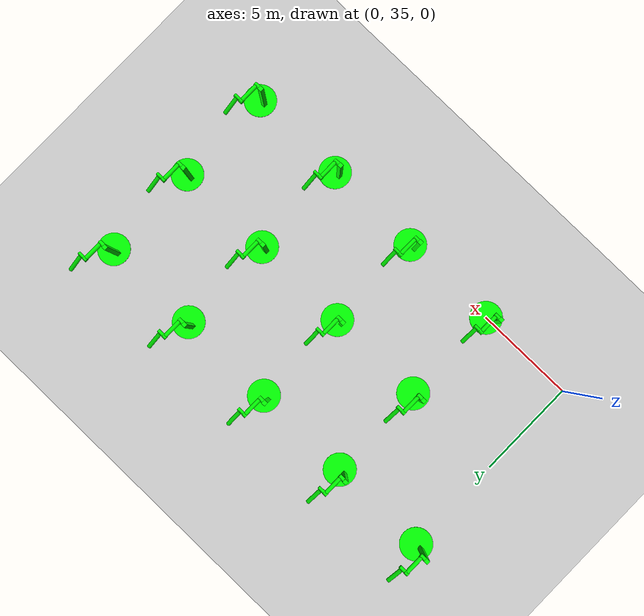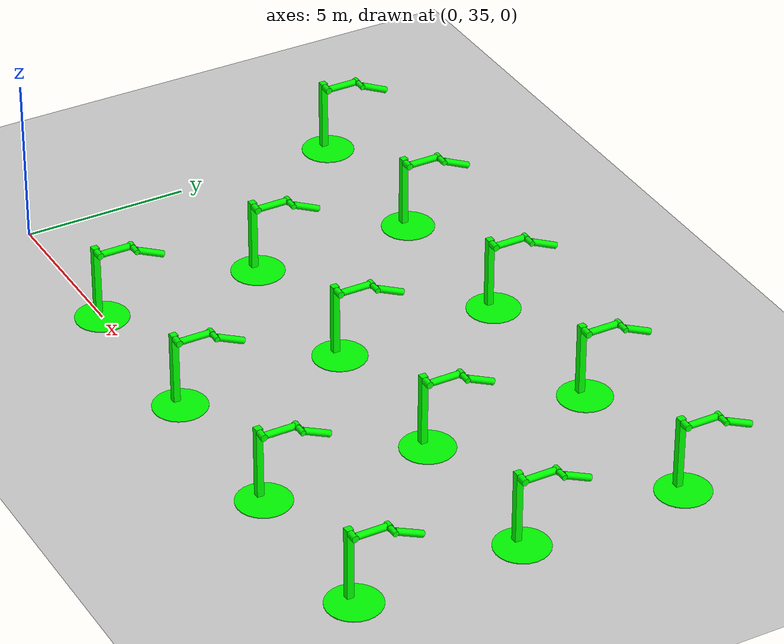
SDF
<sdf version="1.6">
 <world name="double_pendulums">
  <model name="ground_plane">
   <static>true</static>
   <link name="link">
    <collision name="collision">
     <geometry><plane><normal>0 0 1</normal><size>100 100</size></plane></geometry>
    </collision>
    <visual name="visual">
     <geometry><plane><normal>0 0 1</normal><size>100 100</size></plane></geometry>
     <material>
      <ambient>0.8 0.8 0.8 1</ambient>
      <diffuse>0.8 0.8 0.8 1</diffuse>
      <specular>0.8 0.8 0.8 1</specular>
     </material>
    </visual>
   </link>
  </model>
  <model name="dbl_pendulum_111">
   <pose>5 35 0 0 0 0</pose>
   <link name="base">
    <inertial><mass>100</mass></inertial>
    <visual name="vis_plate_on_ground">
     <pose>0 0 0.01 0 0 0</pose>
     <geometry><cylinder><radius>0.8</radius><length>0.02</length></cylinder></geometry>
     <material><ambient>0 1 0 1</ambient><diffuse>0 1 0 1</diffuse><specular>0 1 0 1</specular></material>
    </visual>
    <visual name="vis_pole">
     <pose>-0.275 0 1.1 0 0 0</pose>
     <geometry><box><size>0.2 0.2 2.2</size></box></geometry>
     <material><ambient>0 1 0 1</ambient><diffuse>0 1 0 1</diffuse><specular>0 1 0 1</specular></material>
    </visual>
    <collision name="col_plate_on_ground">
     <pose>0 0 0.01 0 0 0</pose>
     <geometry><cylinder><radius>0.8</radius><length>0.02</length></cylinder></geometry>
    </collision>
    <collision name="col_pole">
     <pose>-0.275 0 1.1 0 0 0</pose>
     <geometry><box><size>0.2 0.2 2.2</size></box></geometry>
    </collision>
   </link>
   <link name="upper_link">
    <pose>0 0 2.1 -1.5708 0 0</pose>
    <inertial><pose>0 0 0.5 0 0 0</pose></inertial>
    <visual name="vis_upper_joint">
     <pose>-0.05 0 0 0 1.5708 0</pose>
     <geometry><cylinder><radius>0.1</radius><length>0.3</length></cylinder></geometry>
     <material><ambient>0 1 0 1</ambient><diffuse>0 1 0 1</diffuse><specular>0 1 0 1</specular></material>
    </visual>
    <visual name="vis_lower_joint">
     <pose>0 0 1.0 0 1.5708 0</pose>
     <geometry><cylinder><radius>0.1</radius><length>0.2</length></cylinder></geometry>
     <material><ambient>0 1 0 1</ambient><diffuse>0 1 0 1</diffuse><specular>0 1 0 1</specular></material>
    </visual>
    <visual name="vis_cylinder">
     <pose>0 0 0.5 0 0 0</pose>
     <geometry><cylinder><radius>0.1</radius><length>0.9</length></cylinder></geometry>
     <material><ambient>0 1 0 1</ambient><diffuse>0 1 0 1</diffuse><specular>0 1 0 1</specular></material>
    </visual>
    <collision name="col_upper_joint">
     <pose>-0.05 0 0 0 1.5708 0</pose>
     <geometry><cylinder><radius>0.1</radius><length>0.3</length></cylinder></geometry>
    </collision>
    <collision name="col_lower_joint">
     <pose>0 0 1.0 0 1.5708 0</pose>
     <geometry><cylinder><radius>0.1</radius><length>0.2</length></cylinder></geometry>
    </collision>
    <collision name="col_cylinder">
     <pose>0 0 0.5 0 0 0</pose>
     <geometry><cylinder><radius>0.1</radius><length>0.9</length></cylinder></geometry>
    </collision>
   </link>
   <link name="lower_link">
    <pose>0.25 1.0 2.1 -2 0 0</pose>
    <inertial><pose>0 0 0.5 0 0 0</pose></inertial>
    <visual name="vis_lower_joint">
     <pose>0 0 0 0 1.5708 0</pose>
     <geometry><cylinder><radius>0.08</radius><length>0.3</length></cylinder></geometry>
     <material><ambient>0 1 0 1</ambient><diffuse>0 1 0 1</diffuse><specular>0 1 0 1</specular></material>
    </visual>
    <visual name="vis_cylinder">
     <pose>0 0 0.5 0 0 0</pose>
     <geometry><cylinder><radius>0.1</radius><length>0.9</length></cylinder></geometry>
     <material><ambient>0 1 0 1</ambient><diffuse>0 1 0 1</diffuse><specular>0 1 0 1</specular></material>
    </visual>
    <collision name="col_lower_joint">
     <pose>0 0 0 0 1.5708 0</pose>
     <geometry><cylinder><radius>0.08</radius><length>0.3</length></cylinder></geometry>
    </collision>
    <collision name="col_cylinder">
     <pose>0 0 0.5 0 0 0</pose>
     <geometry><cylinder><radius>0.1</radius><length>0.9</length></cylinder></geometry>
    </collision>
   </link>
   <joint name="upper_joint" type="revolute">
    <parent>base</parent>
    <child>upper_link</child>
    <axis><xyz>1.0 0 0</xyz></axis>
   </joint>
   <joint name="lower_joint" type="revolute">
    <parent>upper_link</parent>
    <child>lower_link</child>
    <axis><xyz>1.0 0 0</xyz></axis>
   </joint>
  </model>
  <model name="dbl_pendulum_112">
   <pose>10 35 0 0 0 0</pose>
   <link name="base">
    <inertial><mass>100</mass></inertial>
    <visual name="vis_plate_on_ground">
     <pose>0 0 0.01 0 0 0</pose>
     <geometry><cylinder><radius>0.8</radius><length>0.02</length></cylinder></geometry>
     <material><ambient>0 1 0 1</ambient><diffuse>0 1 0 1</diffuse><specular>0 1 0 1</specular></material>
    </visual>
    <visual name="vis_pole">
     <pose>-0.275 0 1.1 0 0 0</pose>
     <geometry><box><size>0.2 0.2 2.2</size></box></geometry>
     <material><ambient>0 1 0 1</ambient><diffuse>0 1 0 1</diffuse><specular>0 1 0 1</specular></material>
    </visual>
    <collision name="col_plate_on_ground">
     <pose>0 0 0.01 0 0 0</pose>
     <geometry><cylinder><radius>0.8</radius><length>0.02</length></cylinder></geometry>
    </collision>
    <collision name="col_pole">
     <pose>-0.275 0 1.1 0 0 0</pose>
     <geometry><box><size>0.2 0.2 2.2</size></box></geometry>
    </collision>
   </link>
   <link name="upper_link">
    <pose>0 0 2.1 -1.5708 0 0</pose>
    <inertial><pose>0 0 0.5 0 0 0</pose></inertial>
    <visual name="vis_upper_joint">
     <pose>-0.05 0 0 0 1.5708 0</pose>
     <geometry><cylinder><radius>0.1</radius><length>0.3</length></cylinder></geometry>
     <material><ambient>0 1 0 1</ambient><diffuse>0 1 0 1</diffuse><specular>0 1 0 1</specular></material>
    </visual>
    <visual name="vis_lower_joint">
     <pose>0 0 1.0 0 1.5708 0</pose>
     <geometry><cylinder><radius>0.1</radius><length>0.2</length></cylinder></geometry>
     <material><ambient>0 1 0 1</ambient><diffuse>0 1 0 1</diffuse><specular>0 1 0 1</specular></material>
    </visual>
    <visual name="vis_cylinder">
     <pose>0 0 0.5 0 0 0</pose>
     <geometry><cylinder><radius>0.1</radius><length>0.9</length></cylinder></geometry>
     <material><ambient>0 1 0 1</ambient><diffuse>0 1 0 1</diffuse><specular>0 1 0 1</specular></material>
    </visual>
    <collision name="col_upper_joint">
     <pose>-0.05 0 0 0 1.5708 0</pose>
     <geometry><cylinder><radius>0.1</radius><length>0.3</length></cylinder></geometry>
    </collision>
    <collision name="col_lower_joint">
     <pose>0 0 1.0 0 1.5708 0</pose>
     <geometry><cylinder><radius>0.1</radius><length>0.2</length></cylinder></geometry>
    </collision>
    <collision name="col_cylinder">
     <pose>0 0 0.5 0 0 0</pose>
     <geometry><cylinder><radius>0.1</radius><length>0.9</length></cylinder></geometry>
    </collision>
   </link>
   <link name="lower_link">
    <pose>0.25 1.0 2.1 -2 0 0</pose>
    <inertial><pose>0 0 0.5 0 0 0</pose></inertial>
    <visual name="vis_lower_joint">
     <pose>0 0 0 0 1.5708 0</pose>
     <geometry><cylinder><radius>0.08</radius><length>0.3</length></cylinder></geometry>
     <material><ambient>0 1 0 1</ambient><diffuse>0 1 0 1</diffuse><specular>0 1 0 1</specular></material>
    </visual>
    <visual name="vis_cylinder">
     <pose>0 0 0.5 0 0 0</pose>
     <geometry><cylinder><radius>0.1</radius><length>0.9</length></cylinder></geometry>
     <material><ambient>0 1 0 1</ambient><diffuse>0 1 0 1</diffuse><specular>0 1 0 1</specular></material>
    </visual>
    <collision name="col_lower_joint">
     <pose>0 0 0 0 1.5708 0</pose>
     <geometry><cylinder><radius>0.08</radius><length>0.3</length></cylinder></geometry>
    </collision>
    <collision name="col_cylinder">
     <pose>0 0 0.5 0 0 0</pose>
     <geometry><cylinder><radius>0.1</radius><length>0.9</length></cylinder></geometry>
    </collision>
   </link>
   <joint name="upper_joint" type="revolute">
    <parent>base</parent>
    <child>upper_link</child>
    <axis><xyz>1.0 0 0</xyz></axis>
   </joint>
   <joint name="lower_joint" type="revolute">
    <parent>upper_link</parent>
    <child>lower_link</child>
    <axis><xyz>1.0 0 0</xyz></axis>
   </joint>
  </model>
  <model name="dbl_pendulum_113">
   <pose>15 35 0 0 0 0</pose>
   <link name="base">
    <inertial><mass>100</mass></inertial>
    <visual name="vis_plate_on_ground">
     <pose>0 0 0.01 0 0 0</pose>
     <geometry><cylinder><radius>0.8</radius><length>0.02</length></cylinder></geometry>
     <material><ambient>0 1 0 1</ambient><diffuse>0 1 0 1</diffuse><specular>0 1 0 1</specular></material>
    </visual>
    <visual name="vis_pole">
     <pose>-0.275 0 1.1 0 0 0</pose>
     <geometry><box><size>0.2 0.2 2.2</size></box></geometry>
     <material><ambient>0 1 0 1</ambient><diffuse>0 1 0 1</diffuse><specular>0 1 0 1</specular></material>
    </visual>
    <collision name="col_plate_on_ground">
     <pose>0 0 0.01 0 0 0</pose>
     <geometry><cylinder><radius>0.8</radius><length>0.02</length></cylinder></geometry>
    </collision>
    <collision name="col_pole">
     <pose>-0.275 0 1.1 0 0 0</pose>
     <geometry><box><size>0.2 0.2 2.2</size></box></geometry>
    </collision>
   </link>
   <link name="upper_link">
    <pose>0 0 2.1 -1.5708 0 0</pose>
    <inertial><pose>0 0 0.5 0 0 0</pose></inertial>
    <visual name="vis_upper_joint">
     <pose>-0.05 0 0 0 1.5708 0</pose>
     <geometry><cylinder><radius>0.1</radius><length>0.3</length></cylinder></geometry>
     <material><ambient>0 1 0 1</ambient><diffuse>0 1 0 1</diffuse><specular>0 1 0 1</specular></material>
    </visual>
    <visual name="vis_lower_joint">
     <pose>0 0 1.0 0 1.5708 0</pose>
     <geometry><cylinder><radius>0.1</radius><length>0.2</length></cylinder></geometry>
     <material><ambient>0 1 0 1</ambient><diffuse>0 1 0 1</diffuse><specular>0 1 0 1</specular></material>
    </visual>
    <visual name="vis_cylinder">
     <pose>0 0 0.5 0 0 0</pose>
     <geometry><cylinder><radius>0.1</radius><length>0.9</length></cylinder></geometry>
     <material><ambient>0 1 0 1</ambient><diffuse>0 1 0 1</diffuse><specular>0 1 0 1</specular></material>
    </visual>
    <collision name="col_upper_joint">
     <pose>-0.05 0 0 0 1.5708 0</pose>
     <geometry><cylinder><radius>0.1</radius><length>0.3</length></cylinder></geometry>
    </collision>
    <collision name="col_lower_joint">
     <pose>0 0 1.0 0 1.5708 0</pose>
     <geometry><cylinder><radius>0.1</radius><length>0.2</length></cylinder></geometry>
    </collision>
    <collision name="col_cylinder">
     <pose>0 0 0.5 0 0 0</pose>
     <geometry><cylinder><radius>0.1</radius><length>0.9</length></cylinder></geometry>
    </collision>
   </link>
   <link name="lower_link">
    <pose>0.25 1.0 2.1 -2 0 0</pose>
    <inertial><pose>0 0 0.5 0 0 0</pose></inertial>
    <visual name="vis_lower_joint">
     <pose>0 0 0 0 1.5708 0</pose>
     <geometry><cylinder><radius>0.08</radius><length>0.3</length></cylinder></geometry>
     <material><ambient>0 1 0 1</ambient><diffuse>0 1 0 1</diffuse><specular>0 1 0 1</specular></material>
    </visual>
    <visual name="vis_cylinder">
     <pose>0 0 0.5 0 0 0</pose>
     <geometry><cylinder><radius>0.1</radius><length>0.9</length></cylinder></geometry>
     <material><ambient>0 1 0 1</ambient><diffuse>0 1 0 1</diffuse><specular>0 1 0 1</specular></material>
    </visual>
    <collision name="col_lower_joint">
     <pose>0 0 0 0 1.5708 0</pose>
     <geometry><cylinder><radius>0.08</radius><length>0.3</length></cylinder></geometry>
    </collision>
    <collision name="col_cylinder">
     <pose>0 0 0.5 0 0 0</pose>
     <geometry><cylinder><radius>0.1</radius><length>0.9</length></cylinder></geometry>
    </collision>
   </link>
   <joint name="upper_joint" type="revolute">
    <parent>base</parent>
    <child>upper_link</child>
    <axis><xyz>1.0 0 0</xyz></axis>
   </joint>
   <joint name="lower_joint" type="revolute">
    <parent>upper_link</parent>
    <child>lower_link</child>
    <axis><xyz>1.0 0 0</xyz></axis>
   </joint>
  </model>
  <model name="dbl_pendulum_114">
   <pose>20 35 0 0 0 0</pose>
   <link name="base">
    <inertial><mass>100</mass></inertial>
    <visual name="vis_plate_on_ground">
     <pose>0 0 0.01 0 0 0</pose>
     <geometry><cylinder><radius>0.8</radius><length>0.02</length></cylinder></geometry>
     <material><ambient>0 1 0 1</ambient><diffuse>0 1 0 1</diffuse><specular>0 1 0 1</specular></material>
    </visual>
    <visual name="vis_pole">
     <pose>-0.275 0 1.1 0 0 0</pose>
     <geometry><box><size>0.2 0.2 2.2</size></box></geometry>
     <material><ambient>0 1 0 1</ambient><diffuse>0 1 0 1</diffuse><specular>0 1 0 1</specular></material>
    </visual>
    <collision name="col_plate_on_ground">
     <pose>0 0 0.01 0 0 0</pose>
     <geometry><cylinder><radius>0.8</radius><length>0.02</length></cylinder></geometry>
    </collision>
    <collision name="col_pole">
     <pose>-0.275 0 1.1 0 0 0</pose>
     <geometry><box><size>0.2 0.2 2.2</size></box></geometry>
    </collision>
   </link>
   <link name="upper_link">
    <pose>0 0 2.1 -1.5708 0 0</pose>
    <inertial><pose>0 0 0.5 0 0 0</pose></inertial>
    <visual name="vis_upper_joint">
     <pose>-0.05 0 0 0 1.5708 0</pose>
     <geometry><cylinder><radius>0.1</radius><length>0.3</length></cylinder></geometry>
     <material><ambient>0 1 0 1</ambient><diffuse>0 1 0 1</diffuse><specular>0 1 0 1</specular></material>
    </visual>
    <visual name="vis_lower_joint">
     <pose>0 0 1.0 0 1.5708 0</pose>
     <geometry><cylinder><radius>0.1</radius><length>0.2</length></cylinder></geometry>
     <material><ambient>0 1 0 1</ambient><diffuse>0 1 0 1</diffuse><specular>0 1 0 1</specular></material>
    </visual>
    <visual name="vis_cylinder">
     <pose>0 0 0.5 0 0 0</pose>
     <geometry><cylinder><radius>0.1</radius><length>0.9</length></cylinder></geometry>
     <material><ambient>0 1 0 1</ambient><diffuse>0 1 0 1</diffuse><specular>0 1 0 1</specular></material>
    </visual>
    <collision name="col_upper_joint">
     <pose>-0.05 0 0 0 1.5708 0</pose>
     <geometry><cylinder><radius>0.1</radius><length>0.3</length></cylinder></geometry>
    </collision>
    <collision name="col_lower_joint">
     <pose>0 0 1.0 0 1.5708 0</pose>
     <geometry><cylinder><radius>0.1</radius><length>0.2</length></cylinder></geometry>
    </collision>
    <collision name="col_cylinder">
     <pose>0 0 0.5 0 0 0</pose>
     <geometry><cylinder><radius>0.1</radius><length>0.9</length></cylinder></geometry>
    </collision>
   </link>
   <link name="lower_link">
    <pose>0.25 1.0 2.1 -2 0 0</pose>
    <inertial><pose>0 0 0.5 0 0 0</pose></inertial>
    <visual name="vis_lower_joint">
     <pose>0 0 0 0 1.5708 0</pose>
     <geometry><cylinder><radius>0.08</radius><length>0.3</length></cylinder></geometry>
     <material><ambient>0 1 0 1</ambient><diffuse>0 1 0 1</diffuse><specular>0 1 0 1</specular></material>
    </visual>
    <visual name="vis_cylinder">
     <pose>0 0 0.5 0 0 0</pose>
     <geometry><cylinder><radius>0.1</radius><length>0.9</length></cylinder></geometry>
     <material><ambient>0 1 0 1</ambient><diffuse>0 1 0 1</diffuse><specular>0 1 0 1</specular></material>
    </visual>
    <collision name="col_lower_joint">
     <pose>0 0 0 0 1.5708 0</pose>
     <geometry><cylinder><radius>0.08</radius><length>0.3</length></cylinder></geometry>
    </collision>
    <collision name="col_cylinder">
     <pose>0 0 0.5 0 0 0</pose>
     <geometry><cylinder><radius>0.1</radius><length>0.9</length></cylinder></geometry>
    </collision>
   </link>
   <joint name="upper_joint" type="revolute">
    <parent>base</parent>
    <child>upper_link</child>
    <axis><xyz>1.0 0 0</xyz></axis>
   </joint>
   <joint name="lower_joint" type="revolute">
    <parent>upper_link</parent>
    <child>lower_link</child>
    <axis><xyz>1.0 0 0</xyz></axis>
   </joint>
  </model>
  <model name="dbl_pendulum_126">
   <pose>5 40 0 0 0 0</pose>
   <link name="base">
    <inertial><mass>100</mass></inertial>
    <visual name="vis_plate_on_ground">
     <pose>0 0 0.01 0 0 0</pose>
     <geometry><cylinder><radius>0.8</radius><length>0.02</length></cylinder></geometry>
     <material><ambient>0 1 0 1</ambient><diffuse>0 1 0 1</diffuse><specular>0 1 0 1</specular></material>
    </visual>
    <visual name="vis_pole">
     <pose>-0.275 0 1.1 0 0 0</pose>
     <geometry><box><size>0.2 0.2 2.2</size></box></geometry>
     <material><ambient>0 1 0 1</ambient><diffuse>0 1 0 1</diffuse><specular>0 1 0 1</specular></material>
    </visual>
    <collision name="col_plate_on_ground">
     <pose>0 0 0.01 0 0 0</pose>
     <geometry><cylinder><radius>0.8</radius><length>0.02</length></cylinder></geometry>
    </collision>
    <collision name="col_pole">
     <pose>-0.275 0 1.1 0 0 0</pose>
     <geometry><box><size>0.2 0.2 2.2</size></box></geometry>
    </collision>
   </link>
   <link name="upper_link">
    <pose>0 0 2.1 -1.5708 0 0</pose>
    <inertial><pose>0 0 0.5 0 0 0</pose></inertial>
    <visual name="vis_upper_joint">
     <pose>-0.05 0 0 0 1.5708 0</pose>
     <geometry><cylinder><radius>0.1</radius><length>0.3</length></cylinder></geometry>
     <material><ambient>0 1 0 1</ambient><diffuse>0 1 0 1</diffuse><specular>0 1 0 1</specular></material>
    </visual>
    <visual name="vis_lower_joint">
     <pose>0 0 1.0 0 1.5708 0</pose>
     <geometry><cylinder><radius>0.1</radius><length>0.2</length></cylinder></geometry>
     <material><ambient>0 1 0 1</ambient><diffuse>0 1 0 1</diffuse><specular>0 1 0 1</specular></material>
    </visual>
    <visual name="vis_cylinder">
     <pose>0 0 0.5 0 0 0</pose>
     <geometry><cylinder><radius>0.1</radius><length>0.9</length></cylinder></geometry>
     <material><ambient>0 1 0 1</ambient><diffuse>0 1 0 1</diffuse><specular>0 1 0 1</specular></material>
    </visual>
    <collision name="col_upper_joint">
     <pose>-0.05 0 0 0 1.5708 0</pose>
     <geometry><cylinder><radius>0.1</radius><length>0.3</length></cylinder></geometry>
    </collision>
    <collision name="col_lower_joint">
     <pose>0 0 1.0 0 1.5708 0</pose>
     <geometry><cylinder><radius>0.1</radius><length>0.2</length></cylinder></geometry>
    </collision>
    <collision name="col_cylinder">
     <pose>0 0 0.5 0 0 0</pose>
     <geometry><cylinder><radius>0.1</radius><length>0.9</length></cylinder></geometry>
    </collision>
   </link>
   <link name="lower_link">
    <pose>0.25 1.0 2.1 -2 0 0</pose>
    <inertial><pose>0 0 0.5 0 0 0</pose></inertial>
    <visual name="vis_lower_joint">
     <pose>0 0 0 0 1.5708 0</pose>
     <geometry><cylinder><radius>0.08</radius><length>0.3</length></cylinder></geometry>
     <material><ambient>0 1 0 1</ambient><diffuse>0 1 0 1</diffuse><specular>0 1 0 1</specular></material>
    </visual>
    <visual name="vis_cylinder">
     <pose>0 0 0.5 0 0 0</pose>
     <geometry><cylinder><radius>0.1</radius><length>0.9</length></cylinder></geometry>
     <material><ambient>0 1 0 1</ambient><diffuse>0 1 0 1</diffuse><specular>0 1 0 1</specular></material>
    </visual>
    <collision name="col_lower_joint">
     <pose>0 0 0 0 1.5708 0</pose>
     <geometry><cylinder><radius>0.08</radius><length>0.3</length></cylinder></geometry>
    </collision>
    <collision name="col_cylinder">
     <pose>0 0 0.5 0 0 0</pose>
     <geometry><cylinder><radius>0.1</radius><length>0.9</length></cylinder></geometry>
    </collision>
   </link>
   <joint name="upper_joint" type="revolute">
    <parent>base</parent>
    <child>upper_link</child>
    <axis><xyz>1.0 0 0</xyz></axis>
   </joint>
   <joint name="lower_joint" type="revolute">
    <parent>upper_link</parent>
    <child>lower_link</child>
    <axis><xyz>1.0 0 0</xyz></axis>
   </joint>
  </model>
  <model name="dbl_pendulum_127">
   <pose>10 40 0 0 0 0</pose>
   <link name="base">
    <inertial><mass>100</mass></inertial>
    <visual name="vis_plate_on_ground">
     <pose>0 0 0.01 0 0 0</pose>
     <geometry><cylinder><radius>0.8</radius><length>0.02</length></cylinder></geometry>
     <material><ambient>0 1 0 1</ambient><diffuse>0 1 0 1</diffuse><specular>0 1 0 1</specular></material>
    </visual>
    <visual name="vis_pole">
     <pose>-0.275 0 1.1 0 0 0</pose>
     <geometry><box><size>0.2 0.2 2.2</size></box></geometry>
     <material><ambient>0 1 0 1</ambient><diffuse>0 1 0 1</diffuse><specular>0 1 0 1</specular></material>
    </visual>
    <collision name="col_plate_on_ground">
     <pose>0 0 0.01 0 0 0</pose>
     <geometry><cylinder><radius>0.8</radius><length>0.02</length></cylinder></geometry>
    </collision>
    <collision name="col_pole">
     <pose>-0.275 0 1.1 0 0 0</pose>
     <geometry><box><size>0.2 0.2 2.2</size></box></geometry>
    </collision>
   </link>
   <link name="upper_link">
    <pose>0 0 2.1 -1.5708 0 0</pose>
    <inertial><pose>0 0 0.5 0 0 0</pose></inertial>
    <visual name="vis_upper_joint">
     <pose>-0.05 0 0 0 1.5708 0</pose>
     <geometry><cylinder><radius>0.1</radius><length>0.3</length></cylinder></geometry>
     <material><ambient>0 1 0 1</ambient><diffuse>0 1 0 1</diffuse><specular>0 1 0 1</specular></material>
    </visual>
    <visual name="vis_lower_joint">
     <pose>0 0 1.0 0 1.5708 0</pose>
     <geometry><cylinder><radius>0.1</radius><length>0.2</length></cylinder></geometry>
     <material><ambient>0 1 0 1</ambient><diffuse>0 1 0 1</diffuse><specular>0 1 0 1</specular></material>
    </visual>
    <visual name="vis_cylinder">
     <pose>0 0 0.5 0 0 0</pose>
     <geometry><cylinder><radius>0.1</radius><length>0.9</length></cylinder></geometry>
     <material><ambient>0 1 0 1</ambient><diffuse>0 1 0 1</diffuse><specular>0 1 0 1</specular></material>
    </visual>
    <collision name="col_upper_joint">
     <pose>-0.05 0 0 0 1.5708 0</pose>
     <geometry><cylinder><radius>0.1</radius><length>0.3</length></cylinder></geometry>
    </collision>
    <collision name="col_lower_joint">
     <pose>0 0 1.0 0 1.5708 0</pose>
     <geometry><cylinder><radius>0.1</radius><length>0.2</length></cylinder></geometry>
    </collision>
    <collision name="col_cylinder">
     <pose>0 0 0.5 0 0 0</pose>
     <geometry><cylinder><radius>0.1</radius><length>0.9</length></cylinder></geometry>
    </collision>
   </link>
   <link name="lower_link">
    <pose>0.25 1.0 2.1 -2 0 0</pose>
    <inertial><pose>0 0 0.5 0 0 0</pose></inertial>
    <visual name="vis_lower_joint">
     <pose>0 0 0 0 1.5708 0</pose>
     <geometry><cylinder><radius>0.08</radius><length>0.3</length></cylinder></geometry>
     <material><ambient>0 1 0 1</ambient><diffuse>0 1 0 1</diffuse><specular>0 1 0 1</specular></material>
    </visual>
    <visual name="vis_cylinder">
     <pose>0 0 0.5 0 0 0</pose>
     <geometry><cylinder><radius>0.1</radius><length>0.9</length></cylinder></geometry>
     <material><ambient>0 1 0 1</ambient><diffuse>0 1 0 1</diffuse><specular>0 1 0 1</specular></material>
    </visual>
    <collision name="col_lower_joint">
     <pose>0 0 0 0 1.5708 0</pose>
     <geometry><cylinder><radius>0.08</radius><length>0.3</length></cylinder></geometry>
    </collision>
    <collision name="col_cylinder">
     <pose>0 0 0.5 0 0 0</pose>
     <geometry><cylinder><radius>0.1</radius><length>0.9</length></cylinder></geometry>
    </collision>
   </link>
   <joint name="upper_joint" type="revolute">
    <parent>base</parent>
    <child>upper_link</child>
    <axis><xyz>1.0 0 0</xyz></axis>
   </joint>
   <joint name="lower_joint" type="revolute">
    <parent>upper_link</parent>
    <child>lower_link</child>
    <axis><xyz>1.0 0 0</xyz></axis>
   </joint>
  </model>
  <model name="dbl_pendulum_128">
   <pose>15 40 0 0 0 0</pose>
   <link name="base">
    <inertial><mass>100</mass></inertial>
    <visual name="vis_plate_on_ground">
     <pose>0 0 0.01 0 0 0</pose>
     <geometry><cylinder><radius>0.8</radius><length>0.02</length></cylinder></geometry>
     <material><ambient>0 1 0 1</ambient><diffuse>0 1 0 1</diffuse><specular>0 1 0 1</specular></material>
    </visual>
    <visual name="vis_pole">
     <pose>-0.275 0 1.1 0 0 0</pose>
     <geometry><box><size>0.2 0.2 2.2</size></box></geometry>
     <material><ambient>0 1 0 1</ambient><diffuse>0 1 0 1</diffuse><specular>0 1 0 1</specular></material>
    </visual>
    <collision name="col_plate_on_ground">
     <pose>0 0 0.01 0 0 0</pose>
     <geometry><cylinder><radius>0.8</radius><length>0.02</length></cylinder></geometry>
    </collision>
    <collision name="col_pole">
     <pose>-0.275 0 1.1 0 0 0</pose>
     <geometry><box><size>0.2 0.2 2.2</size></box></geometry>
    </collision>
   </link>
   <link name="upper_link">
    <pose>0 0 2.1 -1.5708 0 0</pose>
    <inertial><pose>0 0 0.5 0 0 0</pose></inertial>
    <visual name="vis_upper_joint">
     <pose>-0.05 0 0 0 1.5708 0</pose>
     <geometry><cylinder><radius>0.1</radius><length>0.3</length></cylinder></geometry>
     <material><ambient>0 1 0 1</ambient><diffuse>0 1 0 1</diffuse><specular>0 1 0 1</specular></material>
    </visual>
    <visual name="vis_lower_joint">
     <pose>0 0 1.0 0 1.5708 0</pose>
     <geometry><cylinder><radius>0.1</radius><length>0.2</length></cylinder></geometry>
     <material><ambient>0 1 0 1</ambient><diffuse>0 1 0 1</diffuse><specular>0 1 0 1</specular></material>
    </visual>
    <visual name="vis_cylinder">
     <pose>0 0 0.5 0 0 0</pose>
     <geometry><cylinder><radius>0.1</radius><length>0.9</length></cylinder></geometry>
     <material><ambient>0 1 0 1</ambient><diffuse>0 1 0 1</diffuse><specular>0 1 0 1</specular></material>
    </visual>
    <collision name="col_upper_joint">
     <pose>-0.05 0 0 0 1.5708 0</pose>
     <geometry><cylinder><radius>0.1</radius><length>0.3</length></cylinder></geometry>
    </collision>
    <collision name="col_lower_joint">
     <pose>0 0 1.0 0 1.5708 0</pose>
     <geometry><cylinder><radius>0.1</radius><length>0.2</length></cylinder></geometry>
    </collision>
    <collision name="col_cylinder">
     <pose>0 0 0.5 0 0 0</pose>
     <geometry><cylinder><radius>0.1</radius><length>0.9</length></cylinder></geometry>
    </collision>
   </link>
   <link name="lower_link">
    <pose>0.25 1.0 2.1 -2 0 0</pose>
    <inertial><pose>0 0 0.5 0 0 0</pose></inertial>
    <visual name="vis_lower_joint">
     <pose>0 0 0 0 1.5708 0</pose>
     <geometry><cylinder><radius>0.08</radius><length>0.3</length></cylinder></geometry>
     <material><ambient>0 1 0 1</ambient><diffuse>0 1 0 1</diffuse><specular>0 1 0 1</specular></material>
    </visual>
    <visual name="vis_cylinder">
     <pose>0 0 0.5 0 0 0</pose>
     <geometry><cylinder><radius>0.1</radius><length>0.9</length></cylinder></geometry>
     <material><ambient>0 1 0 1</ambient><diffuse>0 1 0 1</diffuse><specular>0 1 0 1</specular></material>
    </visual>
    <collision name="col_lower_joint">
     <pose>0 0 0 0 1.5708 0</pose>
     <geometry><cylinder><radius>0.08</radius><length>0.3</length></cylinder></geometry>
    </collision>
    <collision name="col_cylinder">
     <pose>0 0 0.5 0 0 0</pose>
     <geometry><cylinder><radius>0.1</radius><length>0.9</length></cylinder></geometry>
    </collision>
   </link>
   <joint name="upper_joint" type="revolute">
    <parent>base</parent>
    <child>upper_link</child>
    <axis><xyz>1.0 0 0</xyz></axis>
   </joint>
   <joint name="lower_joint" type="revolute">
    <parent>upper_link</parent>
    <child>lower_link</child>
    <axis><xyz>1.0 0 0</xyz></axis>
   </joint>
  </model>
  <model name="dbl_pendulum_129">
   <pose>20 40 0 0 0 0</pose>
   <link name="base">
    <inertial><mass>100</mass></inertial>
    <visual name="vis_plate_on_ground">
     <pose>0 0 0.01 0 0 0</pose>
     <geometry><cylinder><radius>0.8</radius><length>0.02</length></cylinder></geometry>
     <material><ambient>0 1 0 1</ambient><diffuse>0 1 0 1</diffuse><specular>0 1 0 1</specular></material>
    </visual>
    <visual name="vis_pole">
     <pose>-0.275 0 1.1 0 0 0</pose>
     <geometry><box><size>0.2 0.2 2.2</size></box></geometry>
     <material><ambient>0 1 0 1</ambient><diffuse>0 1 0 1</diffuse><specular>0 1 0 1</specular></material>
    </visual>
    <collision name="col_plate_on_ground">
     <pose>0 0 0.01 0 0 0</pose>
     <geometry><cylinder><radius>0.8</radius><length>0.02</length></cylinder></geometry>
    </collision>
    <collision name="col_pole">
     <pose>-0.275 0 1.1 0 0 0</pose>
     <geometry><box><size>0.2 0.2 2.2</size></box></geometry>
    </collision>
   </link>
   <link name="upper_link">
    <pose>0 0 2.1 -1.5708 0 0</pose>
    <inertial><pose>0 0 0.5 0 0 0</pose></inertial>
    <visual name="vis_upper_joint">
     <pose>-0.05 0 0 0 1.5708 0</pose>
     <geometry><cylinder><radius>0.1</radius><length>0.3</length></cylinder></geometry>
     <material><ambient>0 1 0 1</ambient><diffuse>0 1 0 1</diffuse><specular>0 1 0 1</specular></material>
    </visual>
    <visual name="vis_lower_joint">
     <pose>0 0 1.0 0 1.5708 0</pose>
     <geometry><cylinder><radius>0.1</radius><length>0.2</length></cylinder></geometry>
     <material><ambient>0 1 0 1</ambient><diffuse>0 1 0 1</diffuse><specular>0 1 0 1</specular></material>
    </visual>
    <visual name="vis_cylinder">
     <pose>0 0 0.5 0 0 0</pose>
     <geometry><cylinder><radius>0.1</radius><length>0.9</length></cylinder></geometry>
     <material><ambient>0 1 0 1</ambient><diffuse>0 1 0 1</diffuse><specular>0 1 0 1</specular></material>
    </visual>
    <collision name="col_upper_joint">
     <pose>-0.05 0 0 0 1.5708 0</pose>
     <geometry><cylinder><radius>0.1</radius><length>0.3</length></cylinder></geometry>
    </collision>
    <collision name="col_lower_joint">
     <pose>0 0 1.0 0 1.5708 0</pose>
     <geometry><cylinder><radius>0.1</radius><length>0.2</length></cylinder></geometry>
    </collision>
    <collision name="col_cylinder">
     <pose>0 0 0.5 0 0 0</pose>
     <geometry><cylinder><radius>0.1</radius><length>0.9</length></cylinder></geometry>
    </collision>
   </link>
   <link name="lower_link">
    <pose>0.25 1.0 2.1 -2 0 0</pose>
    <inertial><pose>0 0 0.5 0 0 0</pose></inertial>
    <visual name="vis_lower_joint">
     <pose>0 0 0 0 1.5708 0</pose>
     <geometry><cylinder><radius>0.08</radius><length>0.3</length></cylinder></geometry>
     <material><ambient>0 1 0 1</ambient><diffuse>0 1 0 1</diffuse><specular>0 1 0 1</specular></material>
    </visual>
    <visual name="vis_cylinder">
     <pose>0 0 0.5 0 0 0</pose>
     <geometry><cylinder><radius>0.1</radius><length>0.9</length></cylinder></geometry>
     <material><ambient>0 1 0 1</ambient><diffuse>0 1 0 1</diffuse><specular>0 1 0 1</specular></material>
    </visual>
    <collision name="col_lower_joint">
     <pose>0 0 0 0 1.5708 0</pose>
     <geometry><cylinder><radius>0.08</radius><length>0.3</length></cylinder></geometry>
    </collision>
    <collision name="col_cylinder">
     <pose>0 0 0.5 0 0 0</pose>
     <geometry><cylinder><radius>0.1</radius><length>0.9</length></cylinder></geometry>
    </collision>
   </link>
   <joint name="upper_joint" type="revolute">
    <parent>base</parent>
    <child>upper_link</child>
    <axis><xyz>1.0 0 0</xyz></axis>
   </joint>
   <joint name="lower_joint" type="revolute">
    <parent>upper_link</parent>
    <child>lower_link</child>
    <axis><xyz>1.0 0 0</xyz></axis>
   </joint>
  </model>
  <model name="dbl_pendulum_140">
   <pose>0 45 0 0 0 0</pose>
   <link name="base">
    <inertial><mass>100</mass></inertial>
    <visual name="vis_plate_on_ground">
     <pose>0 0 0.01 0 0 0</pose>
     <geometry><cylinder><radius>0.8</radius><length>0.02</length></cylinder></geometry>
     <material><ambient>0 1 0 1</ambient><diffuse>0 1 0 1</diffuse><specular>0 1 0 1</specular></material>
    </visual>
    <visual name="vis_pole">
     <pose>-0.275 0 1.1 0 0 0</pose>
     <geometry><box><size>0.2 0.2 2.2</size></box></geometry>
     <material><ambient>0 1 0 1</ambient><diffuse>0 1 0 1</diffuse><specular>0 1 0 1</specular></material>
    </visual>
    <collision name="col_plate_on_ground">
     <pose>0 0 0.01 0 0 0</pose>
     <geometry><cylinder><radius>0.8</radius><length>0.02</length></cylinder></geometry>
    </collision>
    <collision name="col_pole">
     <pose>-0.275 0 1.1 0 0 0</pose>
     <geometry><box><size>0.2 0.2 2.2</size></box></geometry>
    </collision>
   </link>
   <link name="upper_link">
    <pose>0 0 2.1 -1.5708 0 0</pose>
    <inertial><pose>0 0 0.5 0 0 0</pose></inertial>
    <visual name="vis_upper_joint">
     <pose>-0.05 0 0 0 1.5708 0</pose>
     <geometry><cylinder><radius>0.1</radius><length>0.3</length></cylinder></geometry>
     <material><ambient>0 1 0 1</ambient><diffuse>0 1 0 1</diffuse><specular>0 1 0 1</specular></material>
    </visual>
    <visual name="vis_lower_joint">
     <pose>0 0 1.0 0 1.5708 0</pose>
     <geometry><cylinder><radius>0.1</radius><length>0.2</length></cylinder></geometry>
     <material><ambient>0 1 0 1</ambient><diffuse>0 1 0 1</diffuse><specular>0 1 0 1</specular></material>
    </visual>
    <visual name="vis_cylinder">
     <pose>0 0 0.5 0 0 0</pose>
     <geometry><cylinder><radius>0.1</radius><length>0.9</length></cylinder></geometry>
     <material><ambient>0 1 0 1</ambient><diffuse>0 1 0 1</diffuse><specular>0 1 0 1</specular></material>
    </visual>
    <collision name="col_upper_joint">
     <pose>-0.05 0 0 0 1.5708 0</pose>
     <geometry><cylinder><radius>0.1</radius><length>0.3</length></cylinder></geometry>
    </collision>
    <collision name="col_lower_joint">
     <pose>0 0 1.0 0 1.5708 0</pose>
     <geometry><cylinder><radius>0.1</radius><length>0.2</length></cylinder></geometry>
    </collision>
    <collision name="col_cylinder">
     <pose>0 0 0.5 0 0 0</pose>
     <geometry><cylinder><radius>0.1</radius><length>0.9</length></cylinder></geometry>
    </collision>
   </link>
   <link name="lower_link">
    <pose>0.25 1.0 2.1 -2 0 0</pose>
    <inertial><pose>0 0 0.5 0 0 0</pose></inertial>
    <visual name="vis_lower_joint">
     <pose>0 0 0 0 1.5708 0</pose>
     <geometry><cylinder><radius>0.08</radius><length>0.3</length></cylinder></geometry>
     <material><ambient>0 1 0 1</ambient><diffuse>0 1 0 1</diffuse><specular>0 1 0 1</specular></material>
    </visual>
    <visual name="vis_cylinder">
     <pose>0 0 0.5 0 0 0</pose>
     <geometry><cylinder><radius>0.1</radius><length>0.9</length></cylinder></geometry>
     <material><ambient>0 1 0 1</ambient><diffuse>0 1 0 1</diffuse><specular>0 1 0 1</specular></material>
    </visual>
    <collision name="col_lower_joint">
     <pose>0 0 0 0 1.5708 0</pose>
     <geometry><cylinder><radius>0.08</radius><length>0.3</length></cylinder></geometry>
    </collision>
    <collision name="col_cylinder">
     <pose>0 0 0.5 0 0 0</pose>
     <geometry><cylinder><radius>0.1</radius><length>0.9</length></cylinder></geometry>
    </collision>
   </link>
   <joint name="upper_joint" type="revolute">
    <parent>base</parent>
    <child>upper_link</child>
    <axis><xyz>1.0 0 0</xyz></axis>
   </joint>
   <joint name="lower_joint" type="revolute">
    <parent>upper_link</parent>
    <child>lower_link</child>
    <axis><xyz>1.0 0 0</xyz></axis>
   </joint>
  </model>
  <model name="dbl_pendulum_141">
   <pose>5 45 0 0 0 0</pose>
   <link name="base">
    <inertial><mass>100</mass></inertial>
    <visual name="vis_plate_on_ground">
     <pose>0 0 0.01 0 0 0</pose>
     <geometry><cylinder><radius>0.8</radius><length>0.02</length></cylinder></geometry>
     <material><ambient>0 1 0 1</ambient><diffuse>0 1 0 1</diffuse><specular>0 1 0 1</specular></material>
    </visual>
    <visual name="vis_pole">
     <pose>-0.275 0 1.1 0 0 0</pose>
     <geometry><box><size>0.2 0.2 2.2</size></box></geometry>
     <material><ambient>0 1 0 1</ambient><diffuse>0 1 0 1</diffuse><specular>0 1 0 1</specular></material>
    </visual>
    <collision name="col_plate_on_ground">
     <pose>0 0 0.01 0 0 0</pose>
     <geometry><cylinder><radius>0.8</radius><length>0.02</length></cylinder></geometry>
    </collision>
    <collision name="col_pole">
     <pose>-0.275 0 1.1 0 0 0</pose>
     <geometry><box><size>0.2 0.2 2.2</size></box></geometry>
    </collision>
   </link>
   <link name="upper_link">
    <pose>0 0 2.1 -1.5708 0 0</pose>
    <inertial><pose>0 0 0.5 0 0 0</pose></inertial>
    <visual name="vis_upper_joint">
     <pose>-0.05 0 0 0 1.5708 0</pose>
     <geometry><cylinder><radius>0.1</radius><length>0.3</length></cylinder></geometry>
     <material><ambient>0 1 0 1</ambient><diffuse>0 1 0 1</diffuse><specular>0 1 0 1</specular></material>
    </visual>
    <visual name="vis_lower_joint">
     <pose>0 0 1.0 0 1.5708 0</pose>
     <geometry><cylinder><radius>0.1</radius><length>0.2</length></cylinder></geometry>
     <material><ambient>0 1 0 1</ambient><diffuse>0 1 0 1</diffuse><specular>0 1 0 1</specular></material>
    </visual>
    <visual name="vis_cylinder">
     <pose>0 0 0.5 0 0 0</pose>
     <geometry><cylinder><radius>0.1</radius><length>0.9</length></cylinder></geometry>
     <material><ambient>0 1 0 1</ambient><diffuse>0 1 0 1</diffuse><specular>0 1 0 1</specular></material>
    </visual>
    <collision name="col_upper_joint">
     <pose>-0.05 0 0 0 1.5708 0</pose>
     <geometry><cylinder><radius>0.1</radius><length>0.3</length></cylinder></geometry>
    </collision>
    <collision name="col_lower_joint">
     <pose>0 0 1.0 0 1.5708 0</pose>
     <geometry><cylinder><radius>0.1</radius><length>0.2</length></cylinder></geometry>
    </collision>
    <collision name="col_cylinder">
     <pose>0 0 0.5 0 0 0</pose>
     <geometry><cylinder><radius>0.1</radius><length>0.9</length></cylinder></geometry>
    </collision>
   </link>
   <link name="lower_link">
    <pose>0.25 1.0 2.1 -2 0 0</pose>
    <inertial><pose>0 0 0.5 0 0 0</pose></inertial>
    <visual name="vis_lower_joint">
     <pose>0 0 0 0 1.5708 0</pose>
     <geometry><cylinder><radius>0.08</radius><length>0.3</length></cylinder></geometry>
     <material><ambient>0 1 0 1</ambient><diffuse>0 1 0 1</diffuse><specular>0 1 0 1</specular></material>
    </visual>
    <visual name="vis_cylinder">
     <pose>0 0 0.5 0 0 0</pose>
     <geometry><cylinder><radius>0.1</radius><length>0.9</length></cylinder></geometry>
     <material><ambient>0 1 0 1</ambient><diffuse>0 1 0 1</diffuse><specular>0 1 0 1</specular></material>
    </visual>
    <collision name="col_lower_joint">
     <pose>0 0 0 0 1.5708 0</pose>
     <geometry><cylinder><radius>0.08</radius><length>0.3</length></cylinder></geometry>
    </collision>
    <collision name="col_cylinder">
     <pose>0 0 0.5 0 0 0</pose>
     <geometry><cylinder><radius>0.1</radius><length>0.9</length></cylinder></geometry>
    </collision>
   </link>
   <joint name="upper_joint" type="revolute">
    <parent>base</parent>
    <child>upper_link</child>
    <axis><xyz>1.0 0 0</xyz></axis>
   </joint>
   <joint name="lower_joint" type="revolute">
    <parent>upper_link</parent>
    <child>lower_link</child>
    <axis><xyz>1.0 0 0</xyz></axis>
   </joint>
  </model>
  <model name="dbl_pendulum_142">
   <pose>10 45 0 0 0 0</pose>
   <link name="base">
    <inertial><mass>100</mass></inertial>
    <visual name="vis_plate_on_ground">
     <pose>0 0 0.01 0 0 0</pose>
     <geometry><cylinder><radius>0.8</radius><length>0.02</length></cylinder></geometry>
     <material><ambient>0 1 0 1</ambient><diffuse>0 1 0 1</diffuse><specular>0 1 0 1</specular></material>
    </visual>
    <visual name="vis_pole">
     <pose>-0.275 0 1.1 0 0 0</pose>
     <geometry><box><size>0.2 0.2 2.2</size></box></geometry>
     <material><ambient>0 1 0 1</ambient><diffuse>0 1 0 1</diffuse><specular>0 1 0 1</specular></material>
    </visual>
    <collision name="col_plate_on_ground">
     <pose>0 0 0.01 0 0 0</pose>
     <geometry><cylinder><radius>0.8</radius><length>0.02</length></cylinder></geometry>
    </collision>
    <collision name="col_pole">
     <pose>-0.275 0 1.1 0 0 0</pose>
     <geometry><box><size>0.2 0.2 2.2</size></box></geometry>
    </collision>
   </link>
   <link name="upper_link">
    <pose>0 0 2.1 -1.5708 0 0</pose>
    <inertial><pose>0 0 0.5 0 0 0</pose></inertial>
    <visual name="vis_upper_joint">
     <pose>-0.05 0 0 0 1.5708 0</pose>
     <geometry><cylinder><radius>0.1</radius><length>0.3</length></cylinder></geometry>
     <material><ambient>0 1 0 1</ambient><diffuse>0 1 0 1</diffuse><specular>0 1 0 1</specular></material>
    </visual>
    <visual name="vis_lower_joint">
     <pose>0 0 1.0 0 1.5708 0</pose>
     <geometry><cylinder><radius>0.1</radius><length>0.2</length></cylinder></geometry>
     <material><ambient>0 1 0 1</ambient><diffuse>0 1 0 1</diffuse><specular>0 1 0 1</specular></material>
    </visual>
    <visual name="vis_cylinder">
     <pose>0 0 0.5 0 0 0</pose>
     <geometry><cylinder><radius>0.1</radius><length>0.9</length></cylinder></geometry>
     <material><ambient>0 1 0 1</ambient><diffuse>0 1 0 1</diffuse><specular>0 1 0 1</specular></material>
    </visual>
    <collision name="col_upper_joint">
     <pose>-0.05 0 0 0 1.5708 0</pose>
     <geometry><cylinder><radius>0.1</radius><length>0.3</length></cylinder></geometry>
    </collision>
    <collision name="col_lower_joint">
     <pose>0 0 1.0 0 1.5708 0</pose>
     <geometry><cylinder><radius>0.1</radius><length>0.2</length></cylinder></geometry>
    </collision>
    <collision name="col_cylinder">
     <pose>0 0 0.5 0 0 0</pose>
     <geometry><cylinder><radius>0.1</radius><length>0.9</length></cylinder></geometry>
    </collision>
   </link>
   <link name="lower_link">
    <pose>0.25 1.0 2.1 -2 0 0</pose>
    <inertial><pose>0 0 0.5 0 0 0</pose></inertial>
    <visual name="vis_lower_joint">
     <pose>0 0 0 0 1.5708 0</pose>
     <geometry><cylinder><radius>0.08</radius><length>0.3</length></cylinder></geometry>
     <material><ambient>0 1 0 1</ambient><diffuse>0 1 0 1</diffuse><specular>0 1 0 1</specular></material>
    </visual>
    <visual name="vis_cylinder">
     <pose>0 0 0.5 0 0 0</pose>
     <geometry><cylinder><radius>0.1</radius><length>0.9</length></cylinder></geometry>
     <material><ambient>0 1 0 1</ambient><diffuse>0 1 0 1</diffuse><specular>0 1 0 1</specular></material>
    </visual>
    <collision name="col_lower_joint">
     <pose>0 0 0 0 1.5708 0</pose>
     <geometry><cylinder><radius>0.08</radius><length>0.3</length></cylinder></geometry>
    </collision>
    <collision name="col_cylinder">
     <pose>0 0 0.5 0 0 0</pose>
     <geometry><cylinder><radius>0.1</radius><length>0.9</length></cylinder></geometry>
    </collision>
   </link>
   <joint name="upper_joint" type="revolute">
    <parent>base</parent>
    <child>upper_link</child>
    <axis><xyz>1.0 0 0</xyz></axis>
   </joint>
   <joint name="lower_joint" type="revolute">
    <parent>upper_link</parent>
    <child>lower_link</child>
    <axis><xyz>1.0 0 0</xyz></axis>
   </joint>
  </model>
  <model name="dbl_pendulum_143">
   <pose>15 45 0 0 0 0</pose>
   <link name="base">
    <inertial><mass>100</mass></inertial>
    <visual name="vis_plate_on_ground">
     <pose>0 0 0.01 0 0 0</pose>
     <geometry><cylinder><radius>0.8</radius><length>0.02</length></cylinder></geometry>
     <material><ambient>0 1 0 1</ambient><diffuse>0 1 0 1</diffuse><specular>0 1 0 1</specular></material>
    </visual>
    <visual name="vis_pole">
     <pose>-0.275 0 1.1 0 0 0</pose>
     <geometry><box><size>0.2 0.2 2.2</size></box></geometry>
     <material><ambient>0 1 0 1</ambient><diffuse>0 1 0 1</diffuse><specular>0 1 0 1</specular></material>
    </visual>
    <collision name="col_plate_on_ground">
     <pose>0 0 0.01 0 0 0</pose>
     <geometry><cylinder><radius>0.8</radius><length>0.02</length></cylinder></geometry>
    </collision>
    <collision name="col_pole">
     <pose>-0.275 0 1.1 0 0 0</pose>
     <geometry><box><size>0.2 0.2 2.2</size></box></geometry>
    </collision>
   </link>
   <link name="upper_link">
    <pose>0 0 2.1 -1.5708 0 0</pose>
    <inertial><pose>0 0 0.5 0 0 0</pose></inertial>
    <visual name="vis_upper_joint">
     <pose>-0.05 0 0 0 1.5708 0</pose>
     <geometry><cylinder><radius>0.1</radius><length>0.3</length></cylinder></geometry>
     <material><ambient>0 1 0 1</ambient><diffuse>0 1 0 1</diffuse><specular>0 1 0 1</specular></material>
    </visual>
    <visual name="vis_lower_joint">
     <pose>0 0 1.0 0 1.5708 0</pose>
     <geometry><cylinder><radius>0.1</radius><length>0.2</length></cylinder></geometry>
     <material><ambient>0 1 0 1</ambient><diffuse>0 1 0 1</diffuse><specular>0 1 0 1</specular></material>
    </visual>
    <visual name="vis_cylinder">
     <pose>0 0 0.5 0 0 0</pose>
     <geometry><cylinder><radius>0.1</radius><length>0.9</length></cylinder></geometry>
     <material><ambient>0 1 0 1</ambient><diffuse>0 1 0 1</diffuse><specular>0 1 0 1</specular></material>
    </visual>
    <collision name="col_upper_joint">
     <pose>-0.05 0 0 0 1.5708 0</pose>
     <geometry><cylinder><radius>0.1</radius><length>0.3</length></cylinder></geometry>
    </collision>
    <collision name="col_lower_joint">
     <pose>0 0 1.0 0 1.5708 0</pose>
     <geometry><cylinder><radius>0.1</radius><length>0.2</length></cylinder></geometry>
    </collision>
    <collision name="col_cylinder">
     <pose>0 0 0.5 0 0 0</pose>
     <geometry><cylinder><radius>0.1</radius><length>0.9</length></cylinder></geometry>
    </collision>
   </link>
   <link name="lower_link">
    <pose>0.25 1.0 2.1 -2 0 0</pose>
    <inertial><pose>0 0 0.5 0 0 0</pose></inertial>
    <visual name="vis_lower_joint">
     <pose>0 0 0 0 1.5708 0</pose>
     <geometry><cylinder><radius>0.08</radius><length>0.3</length></cylinder></geometry>
     <material><ambient>0 1 0 1</ambient><diffuse>0 1 0 1</diffuse><specular>0 1 0 1</specular></material>
    </visual>
    <visual name="vis_cylinder">
     <pose>0 0 0.5 0 0 0</pose>
     <geometry><cylinder><radius>0.1</radius><length>0.9</length></cylinder></geometry>
     <material><ambient>0 1 0 1</ambient><diffuse>0 1 0 1</diffuse><specular>0 1 0 1</specular></material>
    </visual>
    <collision name="col_lower_joint">
     <pose>0 0 0 0 1.5708 0</pose>
     <geometry><cylinder><radius>0.08</radius><length>0.3</length></cylinder></geometry>
    </collision>
    <collision name="col_cylinder">
     <pose>0 0 0.5 0 0 0</pose>
     <geometry><cylinder><radius>0.1</radius><length>0.9</length></cylinder></geometry>
    </collision>
   </link>
   <joint name="upper_joint" type="revolute">
    <parent>base</parent>
    <child>upper_link</child>
    <axis><xyz>1.0 0 0</xyz></axis>
   </joint>
   <joint name="lower_joint" type="revolute">
    <parent>upper_link</parent>
    <child>lower_link</child>
    <axis><xyz>1.0 0 0</xyz></axis>
   </joint>
  </model>
  <model name="dbl_pendulum_144">
   <pose>20 45 0 0 0 0</pose>
   <link name="base">
    <inertial><mass>100</mass></inertial>
    <visual name="vis_plate_on_ground">
     <pose>0 0 0.01 0 0 0</pose>
     <geometry><cylinder><radius>0.8</radius><length>0.02</length></cylinder></geometry>
     <material><ambient>0 1 0 1</ambient><diffuse>0 1 0 1</diffuse><specular>0 1 0 1</specular></material>
    </visual>
    <visual name="vis_pole">
     <pose>-0.275 0 1.1 0 0 0</pose>
     <geometry><box><size>0.2 0.2 2.2</size></box></geometry>
     <material><ambient>0 1 0 1</ambient><diffuse>0 1 0 1</diffuse><specular>0 1 0 1</specular></material>
    </visual>
    <collision name="col_plate_on_ground">
     <pose>0 0 0.01 0 0 0</pose>
     <geometry><cylinder><radius>0.8</radius><length>0.02</length></cylinder></geometry>
    </collision>
    <collision name="col_pole">
     <pose>-0.275 0 1.1 0 0 0</pose>
     <geometry><box><size>0.2 0.2 2.2</size></box></geometry>
    </collision>
   </link>
   <link name="upper_link">
    <pose>0 0 2.1 -1.5708 0 0</pose>
    <inertial><pose>0 0 0.5 0 0 0</pose></inertial>
    <visual name="vis_upper_joint">
     <pose>-0.05 0 0 0 1.5708 0</pose>
     <geometry><cylinder><radius>0.1</radius><length>0.3</length></cylinder></geometry>
     <material><ambient>0 1 0 1</ambient><diffuse>0 1 0 1</diffuse><specular>0 1 0 1</specular></material>
    </visual>
    <visual name="vis_lower_joint">
     <pose>0 0 1.0 0 1.5708 0</pose>
     <geometry><cylinder><radius>0.1</radius><length>0.2</length></cylinder></geometry>
     <material><ambient>0 1 0 1</ambient><diffuse>0 1 0 1</diffuse><specular>0 1 0 1</specular></material>
    </visual>
    <visual name="vis_cylinder">
     <pose>0 0 0.5 0 0 0</pose>
     <geometry><cylinder><radius>0.1</radius><length>0.9</length></cylinder></geometry>
     <material><ambient>0 1 0 1</ambient><diffuse>0 1 0 1</diffuse><specular>0 1 0 1</specular></material>
    </visual>
    <collision name="col_upper_joint">
     <pose>-0.05 0 0 0 1.5708 0</pose>
     <geometry><cylinder><radius>0.1</radius><length>0.3</length></cylinder></geometry>
    </collision>
    <collision name="col_lower_joint">
     <pose>0 0 1.0 0 1.5708 0</pose>
     <geometry><cylinder><radius>0.1</radius><length>0.2</length></cylinder></geometry>
    </collision>
    <collision name="col_cylinder">
     <pose>0 0 0.5 0 0 0</pose>
     <geometry><cylinder><radius>0.1</radius><length>0.9</length></cylinder></geometry>
    </collision>
   </link>
   <link name="lower_link">
    <pose>0.25 1.0 2.1 -2 0 0</pose>
    <inertial><pose>0 0 0.5 0 0 0</pose></inertial>
    <visual name="vis_lower_joint">
     <pose>0 0 0 0 1.5708 0</pose>
     <geometry><cylinder><radius>0.08</radius><length>0.3</length></cylinder></geometry>
     <material><ambient>0 1 0 1</ambient><diffuse>0 1 0 1</diffuse><specular>0 1 0 1</specular></material>
    </visual>
    <visual name="vis_cylinder">
     <pose>0 0 0.5 0 0 0</pose>
     <geometry><cylinder><radius>0.1</radius><length>0.9</length></cylinder></geometry>
     <material><ambient>0 1 0 1</ambient><diffuse>0 1 0 1</diffuse><specular>0 1 0 1</specular></material>
    </visual>
    <collision name="col_lower_joint">
     <pose>0 0 0 0 1.5708 0</pose>
     <geometry><cylinder><radius>0.08</radius><length>0.3</length></cylinder></geometry>
    </collision>
    <collision name="col_cylinder">
     <pose>0 0 0.5 0 0 0</pose>
     <geometry><cylinder><radius>0.1</radius><length>0.9</length></cylinder></geometry>
    </collision>
   </link>
   <joint name="upper_joint" type="revolute">
    <parent>base</parent>
    <child>upper_link</child>
    <axis><xyz>1.0 0 0</xyz></axis>
   </joint>
   <joint name="lower_joint" type="revolute">
    <parent>upper_link</parent>
    <child>lower_link</child>
    <axis><xyz>1.0 0 0</xyz></axis>
   </joint>
  </model>
 </world>
</sdf>
